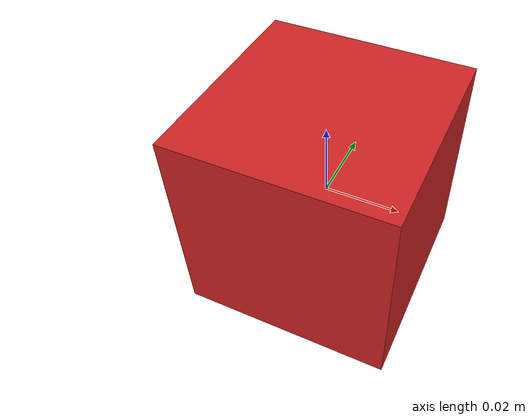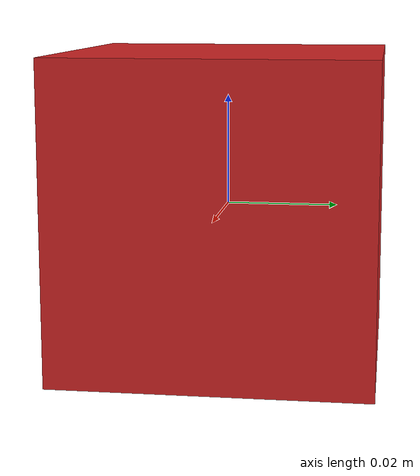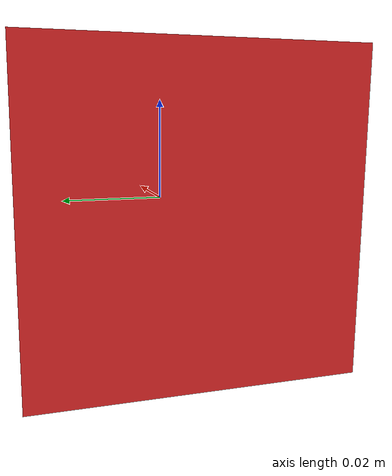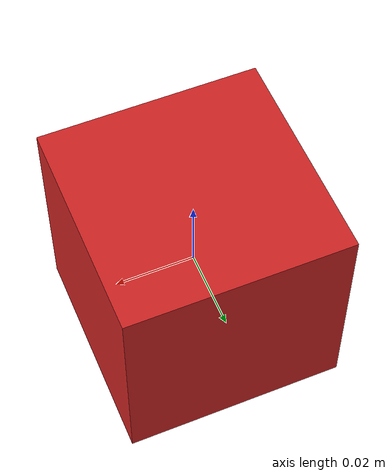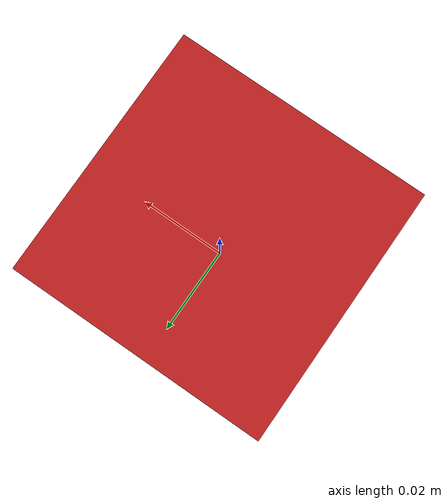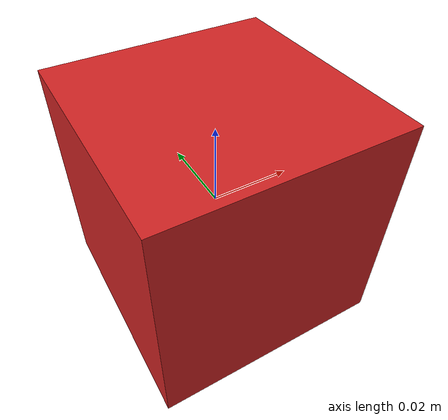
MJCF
<mujoco>
  <asset>
    <material name="red_box_mat" rgba="0.82 0.14 0.14 1"/>
  </asset>
  <worldbody>
    <body>
      <body name="object">
        <geom name="red_box_geom" type="box" size="0.028 0.028 0.028" material="red_box_mat" group="0"/>
        <geom name="red_box_geom_visual" type="box" size="0.028 0.028 0.028" material="red_box_mat" group="1" conaffinity="0" contype="0" mass="1e-8"/>
      </body>
      <site rgba="0 0 0 0" size="0.005" pos="0 0 -0.028" name="bottom_site"/>
      <site rgba="0 0 0 0" size="0.005" pos="0 0 0.028" name="top_site"/>
      <site rgba="0 0 0 0" size="0.005" pos="0.028 0 0" name="horizontal_radius_site"/>
    </body>
  </worldbody>
</mujoco>
